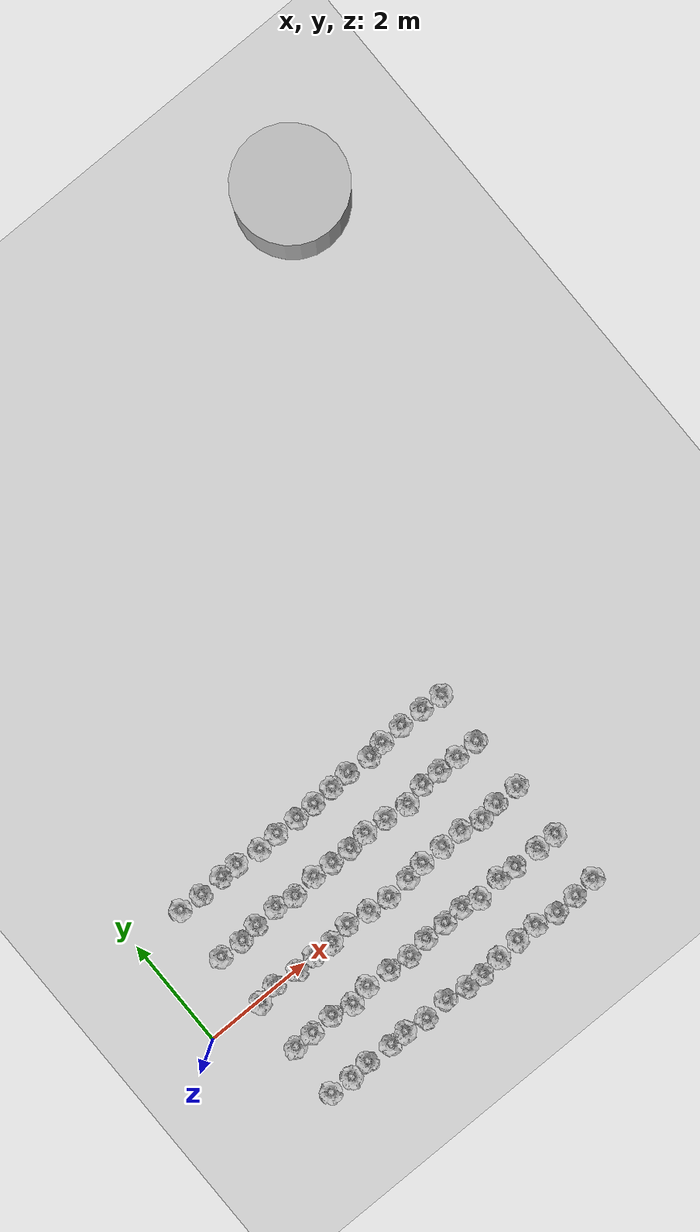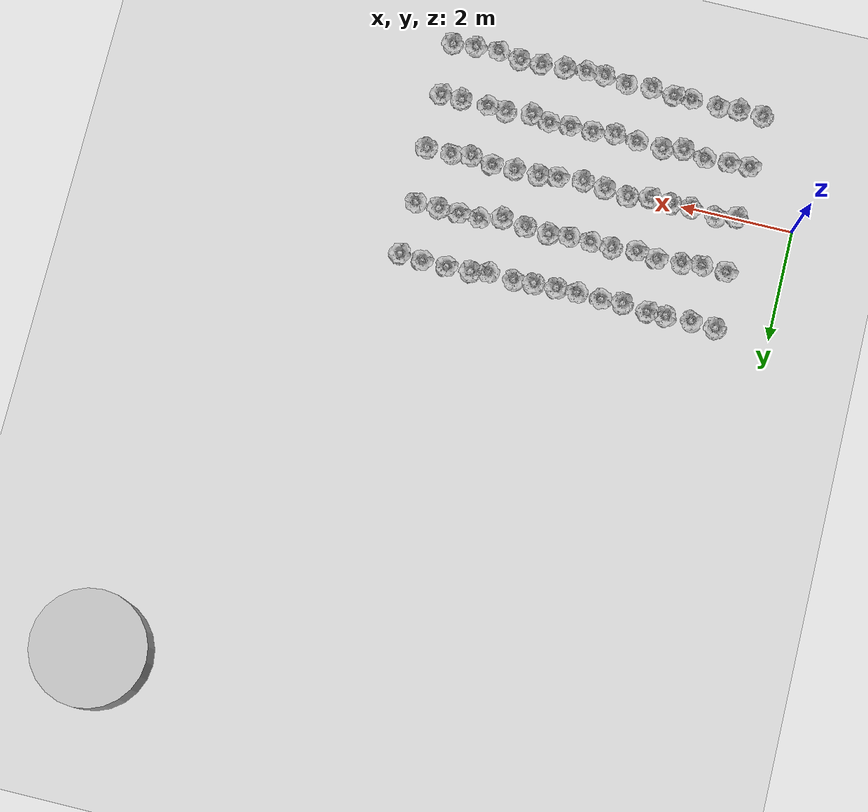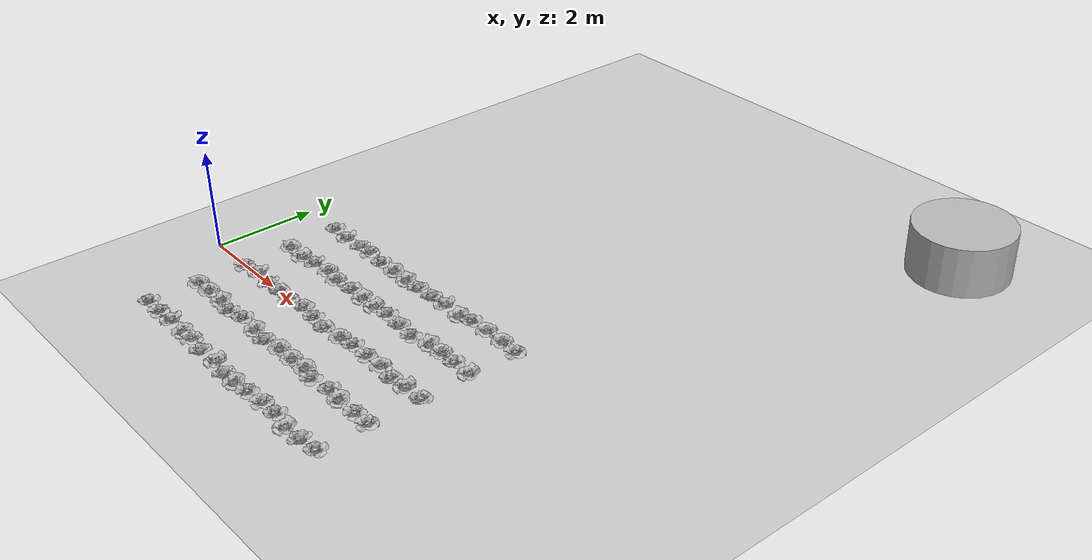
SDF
<sdf version="1.9">
 <world name="default">
  <model name="ground_plane">
   <static>true</static>
   <link name="link">
    <collision name="collision">
     <geometry><plane><normal>0 0 1</normal><size>1 1</size></plane></geometry>
    </collision>
    <visual name="visual">
     <geometry><plane><normal>0 0 1</normal><size>500 500</size></plane></geometry>
     <material>
      <ambient>0.8 0.8 0.8 1</ambient>
      <diffuse>0.8 0.8 0.8 1</diffuse>
      <specular>0.8 0.8 0.8 1</specular>
      <pbr>
       <metal>
        <albedo_map>models://ground_plane_textures/brown_mud_dry_diff_4k.jpg</albedo_map>
        <roughness>0.9</roughness>
        <metalness>0.0</metalness>
       </metal>
      </pbr>
     </material>
    </visual>
    <inertial>
     <mass>1</mass>
     <inertia><ixx>1</ixx><ixy>0</ixy><ixz>0</ixz><iyy>1</iyy><iyz>0</iyz><izz>1</izz></inertia>
    </inertial>
   </link>
  </model>
  <model name="swarm">
   <link name="ref">
    <inertial>
     <pose>10 10 0 0 0 0</pose>
     <mass>100</mass>
     <inertia><ixx>33.33</ixx><ixy>0</ixy><ixz>0</ixz><iyy>33.33</iyy><iyz>0</iyz><izz>50</izz></inertia>
    </inertial>
    <collision name="ref_collision">
     <pose>10 10 0.5 0 0 0</pose>
     <geometry><cylinder><length>1</length><radius>1</radius></cylinder></geometry>
    </collision>
    <visual name="ref_visual">
     <pose>10 10 0.5 0 0 0</pose>
     <geometry><cylinder><length>1</length><radius>1</radius></cylinder></geometry>
    </visual>
   </link>
   <include><uri>lettuce_bib</uri><name>lettuce_bib_1</name><pose>0.955 -1.956 0 0 0 2.119</pose></include>
   <include><uri>lettuce_bib</uri><name>lettuce_bib_2</name><pose>1.391 -1.979 0 0 0 1.280</pose></include>
   <include><uri>lettuce_bib</uri><name>lettuce_bib_3</name><pose>1.759 -1.951 0 0 0 -1.864</pose></include>
   <include><uri>lettuce_bib</uri><name>lettuce_bib_4</name><pose>2.248 -1.977 0 0 0 -0.654</pose></include>
   <include><uri>lettuce_bib</uri><name>lettuce_bib_5</name><pose>2.571 -1.967 0 0 0 0.595</pose></include>
   <include><uri>lettuce_bib</uri><name>lettuce_bib_6</name><pose>2.980 -2.010 0 0 0 -2.887</pose></include>
   <include><uri>lettuce_bib</uri><name>lettuce_bib_7</name><pose>3.436 -1.980 0 0 0 -1.515</pose></include>
   <include><uri>lettuce_bib</uri><name>lettuce_bib_8</name><pose>3.846 -2.041 0 0 0 -2.746</pose></include>
   <include><uri>lettuce_bib</uri><name>lettuce_bib_9</name><pose>4.186 -2.046 0 0 0 -0.740</pose></include>
   <include><uri>lettuce_bib</uri><name>lettuce_bib_10</name><pose>4.578 -2.004 0 0 0 1.537</pose></include>
   <include><uri>lettuce_bib</uri><name>lettuce_bib_11</name><pose>5.006 -1.979 0 0 0 0.884</pose></include>
   <include><uri>lettuce_bib</uri><name>lettuce_bib_12</name><pose>5.397 -1.964 0 0 0 1.962</pose></include>
   <include><uri>lettuce_bib</uri><name>lettuce_bib_13</name><pose>5.800 -2.043 0 0 0 -1.235</pose></include>
   <include><uri>lettuce_bib</uri><name>lettuce_bib_14</name><pose>6.211 -2.022 0 0 0 -2.442</pose></include>
   <include><uri>lettuce_bib</uri><name>lettuce_bib_15</name><pose>6.637 -1.975 0 0 0 2.100</pose></include>
   <include><uri>lettuce_bib</uri><name>lettuce_bib_16</name><pose>0.983 -0.998 0 0 0 0.118</pose></include>
   <include><uri>lettuce_bib</uri><name>lettuce_bib_17</name><pose>1.351 -0.988 0 0 0 -0.099</pose></include>
   <include><uri>lettuce_bib</uri><name>lettuce_bib_18</name><pose>1.785 -0.967 0 0 0 -0.917</pose></include>
   <include><uri>lettuce_bib</uri><name>lettuce_bib_19</name><pose>2.189 -1.032 0 0 0 1.815</pose></include>
   <include><uri>lettuce_bib</uri><name>lettuce_bib_20</name><pose>2.562 -0.957 0 0 0 2.045</pose></include>
   <include><uri>lettuce_bib</uri><name>lettuce_bib_21</name><pose>3.025 -0.990 0 0 0 -0.830</pose></include>
   <include><uri>lettuce_bib</uri><name>lettuce_bib_22</name><pose>3.425 -1.026 0 0 0 -2.745</pose></include>
   <include><uri>lettuce_bib</uri><name>lettuce_bib_23</name><pose>3.832 -0.977 0 0 0 -0.189</pose></include>
   <include><uri>lettuce_bib</uri><name>lettuce_bib_24</name><pose>4.245 -0.981 0 0 0 -0.171</pose></include>
   <include><uri>lettuce_bib</uri><name>lettuce_bib_25</name><pose>4.623 -0.957 0 0 0 -0.419</pose></include>
   <include><uri>lettuce_bib</uri><name>lettuce_bib_26</name><pose>4.960 -1.026 0 0 0 1.534</pose></include>
   <include><uri>lettuce_bib</uri><name>lettuce_bib_27</name><pose>5.423 -0.961 0 0 0 2.166</pose></include>
   <include><uri>lettuce_bib</uri><name>lettuce_bib_28</name><pose>5.750 -1.002 0 0 0 -0.741</pose></include>
   <include><uri>lettuce_bib</uri><name>lettuce_bib_29</name><pose>6.244 -0.998 0 0 0 1.466</pose></include>
   <include><uri>lettuce_bib</uri><name>lettuce_bib_30</name><pose>6.619 -1.009 0 0 0 0.898</pose></include>
   <include><uri>lettuce_bib</uri><name>lettuce_bib_31</name><pose>1.012 -0.039 0 0 0 0.933</pose></include>
   <include><uri>lettuce_bib</uri><name>lettuce_bib_32</name><pose>1.374 0.034 0 0 0 -1.955</pose></include>
   <include><uri>lettuce_bib</uri><name>lettuce_bib_33</name><pose>1.824 -0.021 0 0 0 -2.300</pose></include>
   <include><uri>lettuce_bib</uri><name>lettuce_bib_34</name><pose>2.196 -0.001 0 0 0 2.654</pose></include>
   <include><uri>lettuce_bib</uri><name>lettuce_bib_35</name><pose>2.577 -0.027 0 0 0 0.711</pose></include>
   <include><uri>lettuce_bib</uri><name>lettuce_bib_36</name><pose>2.962 0.049 0 0 0 2.907</pose></include>
   <include><uri>lettuce_bib</uri><name>lettuce_bib_37</name><pose>3.391 -0.001 0 0 0 1.690</pose></include>
   <include><uri>lettuce_bib</uri><name>lettuce_bib_38</name><pose>3.790 -0.041 0 0 0 2.475</pose></include>
   <include><uri>lettuce_bib</uri><name>lettuce_bib_39</name><pose>4.244 -0.009 0 0 0 -0.041</pose></include>
   <include><uri>lettuce_bib</uri><name>lettuce_bib_40</name><pose>4.591 0.043 0 0 0 1.789</pose></include>
   <include><uri>lettuce_bib</uri><name>lettuce_bib_41</name><pose>5.024 0.039 0 0 0 1.230</pose></include>
   <include><uri>lettuce_bib</uri><name>lettuce_bib_42</name><pose>5.436 0.046 0 0 0 0.347</pose></include>
   <include><uri>lettuce_bib</uri><name>lettuce_bib_43</name><pose>5.829 -0.019 0 0 0 2.762</pose></include>
   <include><uri>lettuce_bib</uri><name>lettuce_bib_44</name><pose>6.178 0.022 0 0 0 -1.627</pose></include>
   <include><uri>lettuce_bib</uri><name>lettuce_bib_45</name><pose>6.632 0.026 0 0 0 2.745</pose></include>
   <include><uri>lettuce_bib</uri><name>lettuce_bib_46</name><pose>0.983 0.968 0 0 0 -0.177</pose></include>
   <include><uri>lettuce_bib</uri><name>lettuce_bib_47</name><pose>1.418 0.956 0 0 0 -1.452</pose></include>
   <include><uri>lettuce_bib</uri><name>lettuce_bib_48</name><pose>1.773 1.006 0 0 0 -2.163</pose></include>
   <include><uri>lettuce_bib</uri><name>lettuce_bib_49</name><pose>2.223 1.031 0 0 0 0.104</pose></include>
   <include><uri>lettuce_bib</uri><name>lettuce_bib_50</name><pose>2.592 0.972 0 0 0 0.043</pose></include>
   <include><uri>lettuce_bib</uri><name>lettuce_bib_51</name><pose>3.039 1.029 0 0 0 2.261</pose></include>
   <include><uri>lettuce_bib</uri><name>lettuce_bib_52</name><pose>3.419 1.002 0 0 0 -1.135</pose></include>
   <include><uri>lettuce_bib</uri><name>lettuce_bib_53</name><pose>3.804 1.001 0 0 0 -1.355</pose></include>
   <include><uri>lettuce_bib</uri><name>lettuce_bib_54</name><pose>4.178 1.045 0 0 0 1.638</pose></include>
   <include><uri>lettuce_bib</uri><name>lettuce_bib_55</name><pose>4.591 1.013 0 0 0 3.028</pose></include>
   <include><uri>lettuce_bib</uri><name>lettuce_bib_56</name><pose>5.029 0.957 0 0 0 1.559</pose></include>
   <include><uri>lettuce_bib</uri><name>lettuce_bib_57</name><pose>5.426 1.048 0 0 0 -0.856</pose></include>
   <include><uri>lettuce_bib</uri><name>lettuce_bib_58</name><pose>5.797 1.047 0 0 0 0.049</pose></include>
   <include><uri>lettuce_bib</uri><name>lettuce_bib_59</name><pose>6.170 1.048 0 0 0 2.201</pose></include>
   <include><uri>lettuce_bib</uri><name>lettuce_bib_60</name><pose>6.579 1.038 0 0 0 -1.364</pose></include>
   <include><uri>lettuce_bib</uri><name>lettuce_bib_61</name><pose>0.956 2.016 0 0 0 2.075</pose></include>
   <include><uri>lettuce_bib</uri><name>lettuce_bib_62</name><pose>1.387 1.984 0 0 0 -1.959</pose></include>
   <include><uri>lettuce_bib</uri><name>lettuce_bib_63</name><pose>1.840 2.006 0 0 0 -2.767</pose></include>
   <include><uri>lettuce_bib</uri><name>lettuce_bib_64</name><pose>2.176 2.001 0 0 0 0.741</pose></include>
   <include><uri>lettuce_bib</uri><name>lettuce_bib_65</name><pose>2.631 1.960 0 0 0 1.964</pose></include>
   <include><uri>lettuce_bib</uri><name>lettuce_bib_66</name><pose>3.015 1.969 0 0 0 -0.675</pose></include>
   <include><uri>lettuce_bib</uri><name>lettuce_bib_67</name><pose>3.446 1.954 0 0 0 -0.992</pose></include>
   <include><uri>lettuce_bib</uri><name>lettuce_bib_68</name><pose>3.816 1.969 0 0 0 -3.037</pose></include>
   <include><uri>lettuce_bib</uri><name>lettuce_bib_69</name><pose>4.219 1.986 0 0 0 3.075</pose></include>
   <include><uri>lettuce_bib</uri><name>lettuce_bib_70</name><pose>4.580 2.000 0 0 0 -1.989</pose></include>
   <include><uri>lettuce_bib</uri><name>lettuce_bib_71</name><pose>5.043 1.969 0 0 0 -0.959</pose></include>
   <include><uri>lettuce_bib</uri><name>lettuce_bib_72</name><pose>5.356 2.038 0 0 0 1.985</pose></include>
   <include><uri>lettuce_bib</uri><name>lettuce_bib_73</name><pose>5.784 2.040 0 0 0 0.147</pose></include>
   <include><uri>lettuce_bib</uri><name>lettuce_bib_74</name><pose>6.228 2.035 0 0 0 -0.027</pose></include>
   <include><uri>lettuce_bib</uri><name>lettuce_bib_75</name><pose>6.636 2.009 0 0 0 0.875</pose></include>
  </model>
 </world>
</sdf>
